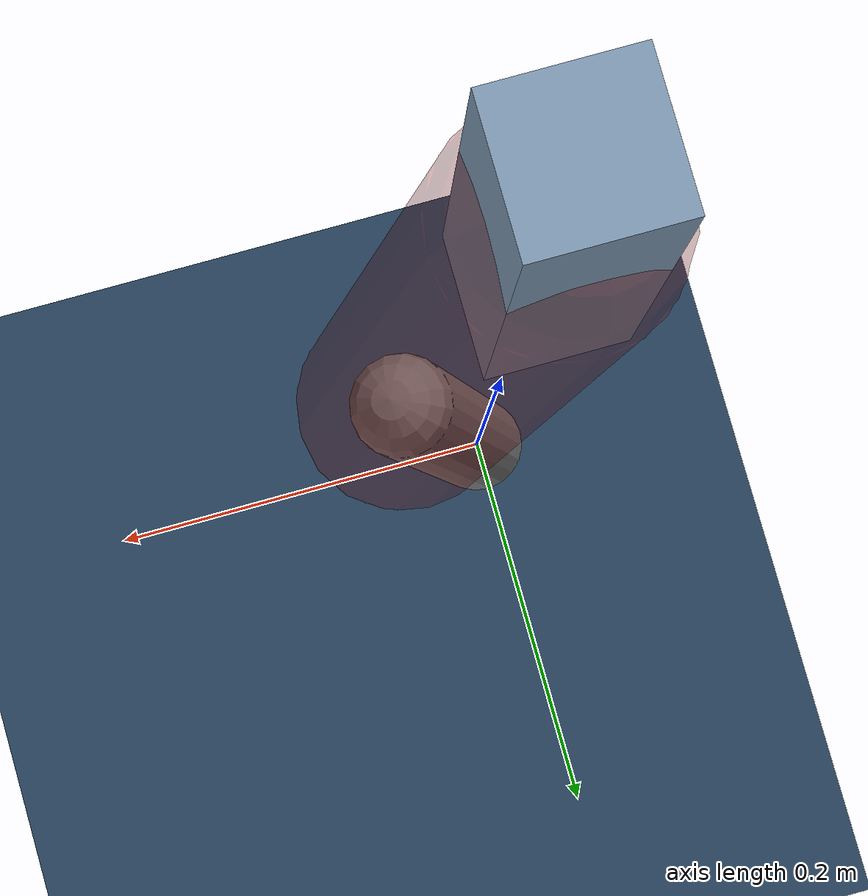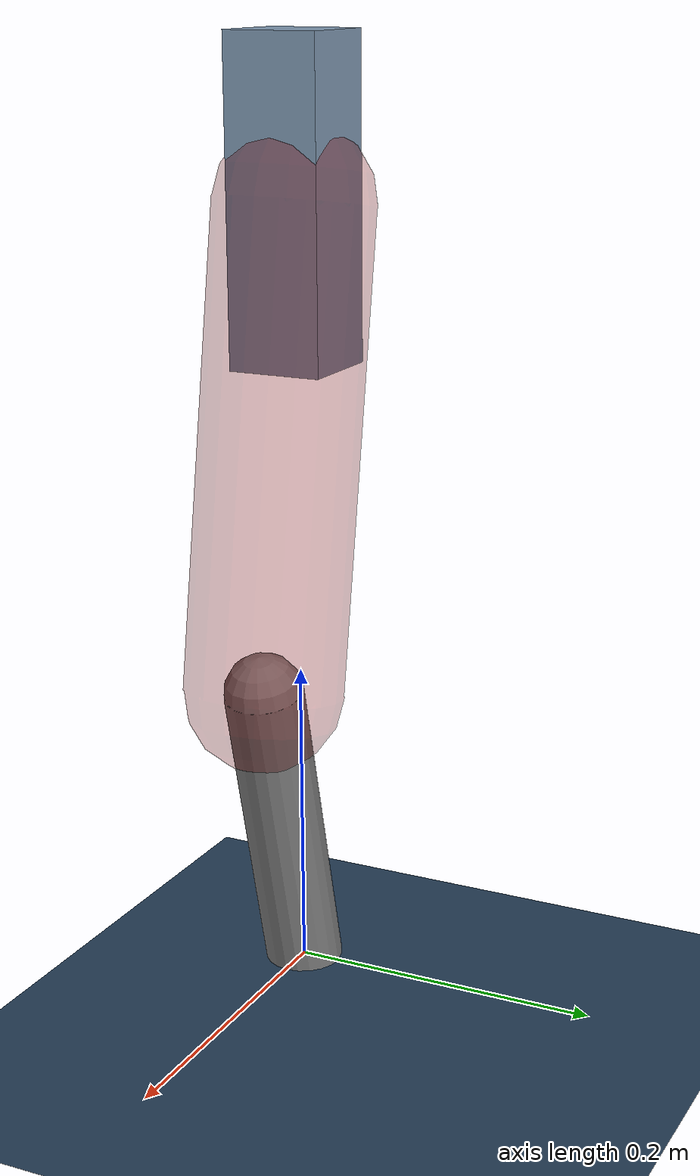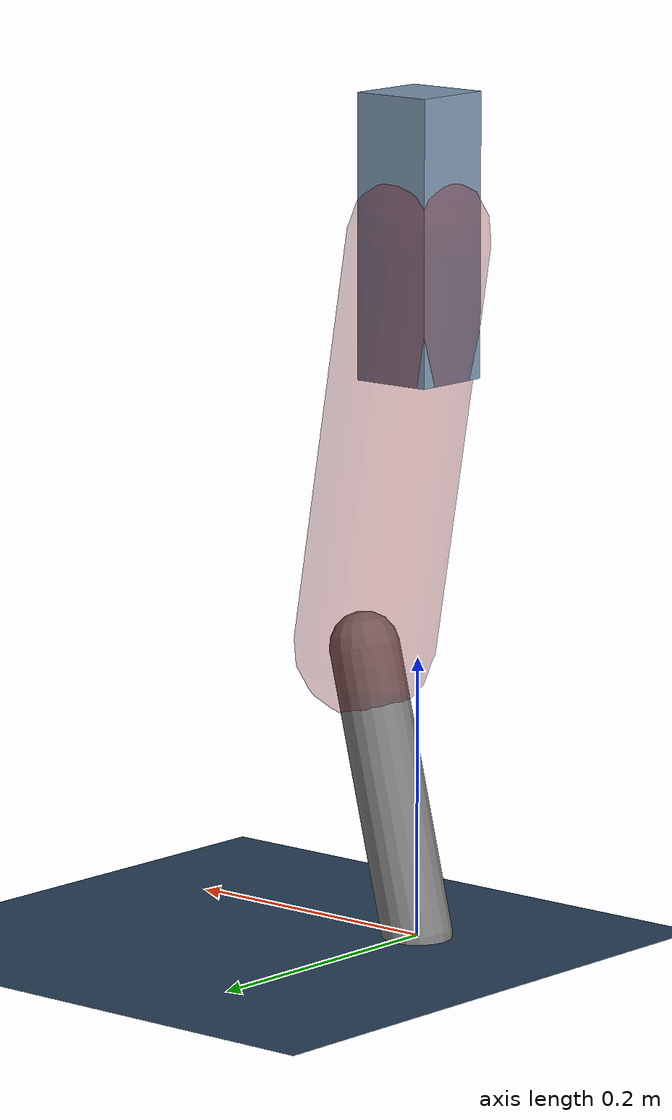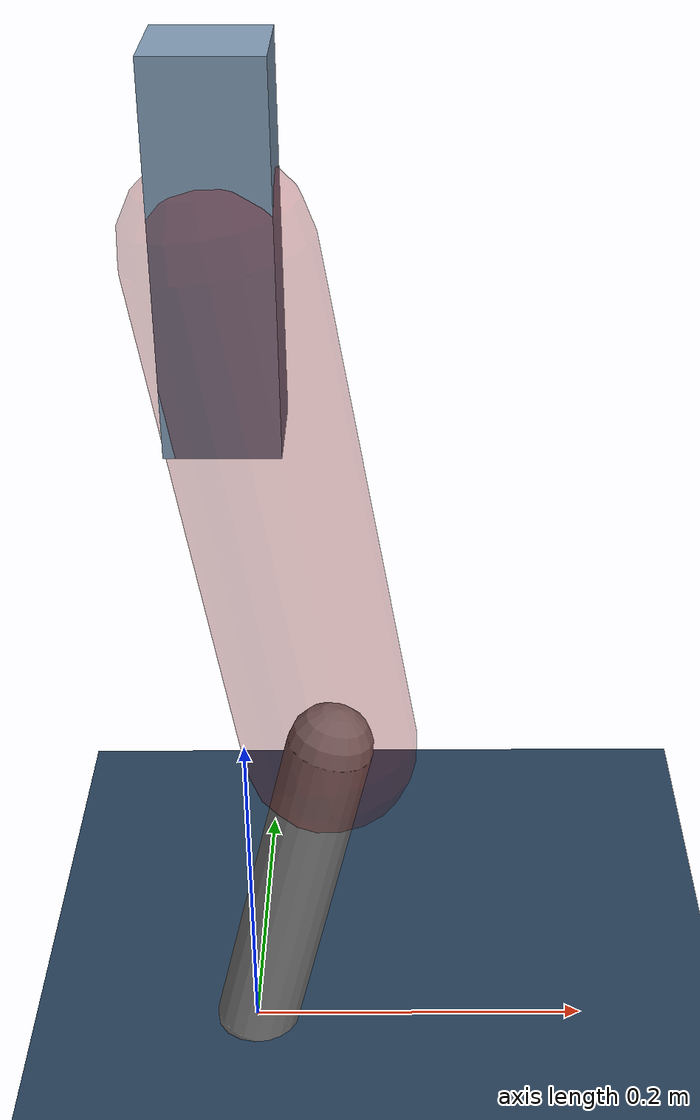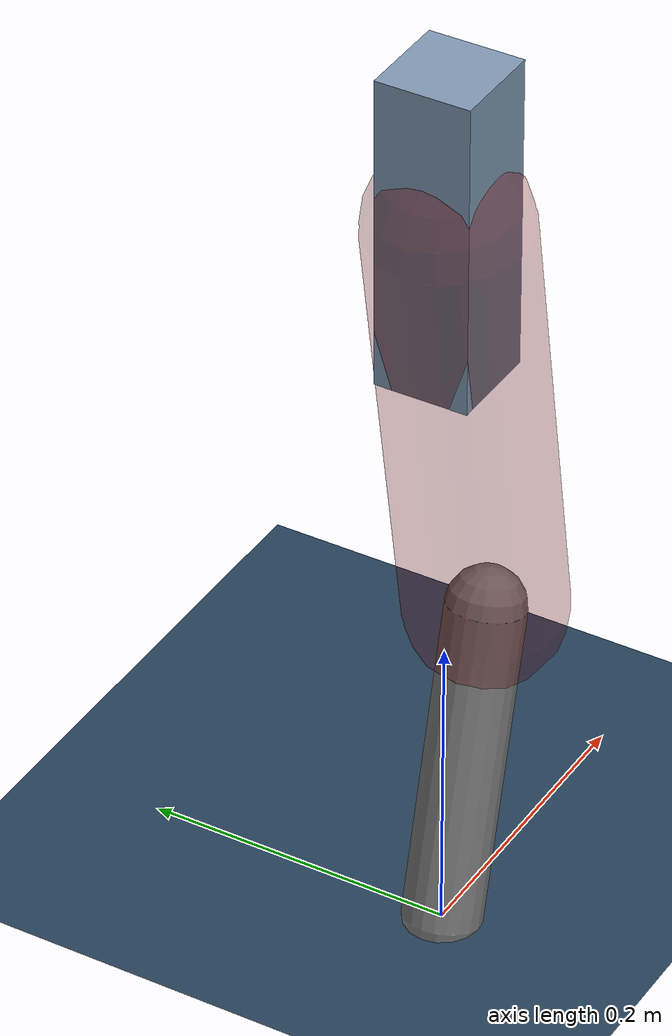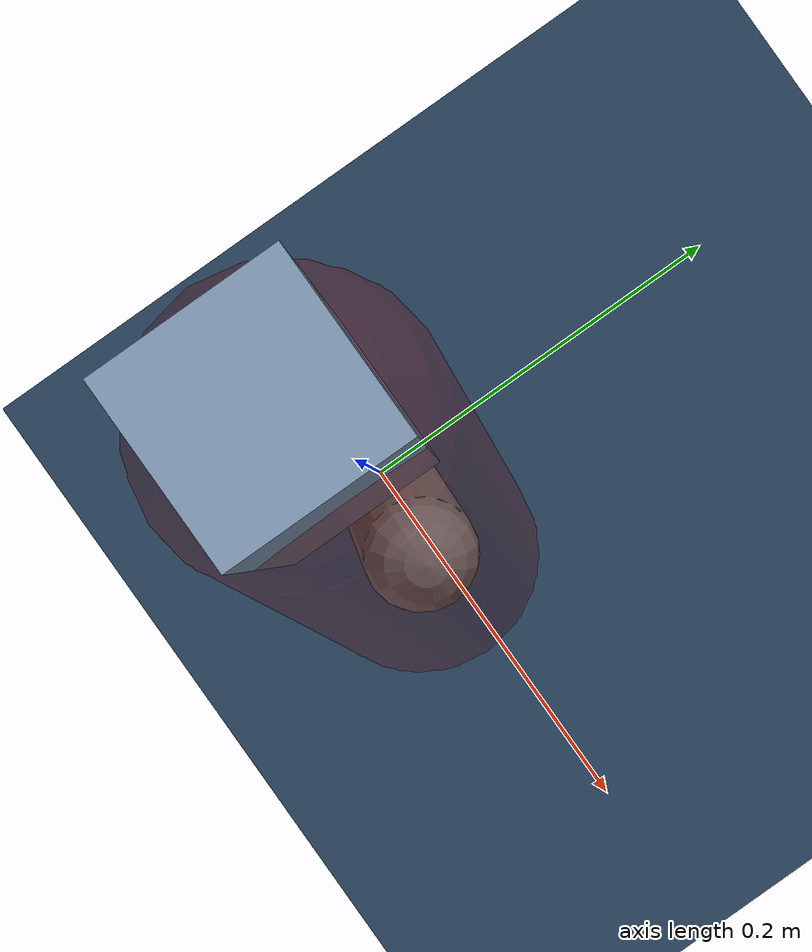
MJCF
<mujoco model="Hopper2D">
	<compiler inertiafromgeom="true" angle="radian" />
	<option timestep="0.001" integrator="implicit" cone="elliptic" solver="Newton" tolerance="1e-10" />

	<default>
		<geom contype="1" conaffinity="1" condim="3" friction="2 0.005 0.0001" solref="0.005 1" />
		<joint limited="true" damping="0.1" />
	</default>

	<asset>
		<texture name="skybox" type="skybox" builtin="gradient" rgb1=".4 .6 .8" rgb2="0 0 0" width="800" height="800" />
		<texture name="grid" type="2d" builtin="checker" rgb1=".1 .2 .3" rgb2=".2 .3 .4" width="300" height="300" mark="edge" markrgb=".2 .3 .4" />
		<material name="ground" texture="grid" texrepeat="1 1" texuniform="true" reflectance="0.1" />
		<material name="leg" rgba="0.5 0.6 0.7 1" />
	</asset>

	<worldbody>

		<geom name="floor" type="plane" size="5 5 0.25" material="ground" />

		<light directional="false" diffuse="0.8 0.8 0.8" specular="0.3 0.3 0.3" pos="0 0 2" dir="0 0 -1" />
		<light mode="targetbodycom" target="base" directional="false" diffuse="0.8 0.8 0.8" specular="0.3 0.3 0.3" pos="0 0 2" dir="0 0 -1" />

		<camera name="fixed" pos="0 -2 1" xyaxes="1 0 0 0 0 1" />
		<camera name="tracking" mode="trackcom" pos="0 -3 1" />

		<body name="root" pos="0 0 0.4969230661215275">
			<joint name="slide_x" type="slide" axis="1 0 0" range="-100 100" />
			<joint name="slide_z" type="slide" axis="0 0 1" range="0 10" />

			<body name="base" pos="0 0 0">
				<geom name="torso" type="box" size="0.03 0.03 0.1" mass="2.356" material="leg" />

				<body name="link1" pos="0 0 0" euler="0 1.4057332619158331 0">
					<joint type="hinge" axis="0 -1 0" pos="0 0 0" name="hinge1" limited="true" range="-3.14 3.14" stiffness="0" damping="0.1" />
					<geom name="thigh" type="capsule" fromto="0 0 0 0.29958078501287133 0 0" size="0.05" rgba="0.5 0 0 0.3" mass="0.9875681195347527" />

					<body name="link2" pos="0.29958078501287133 0 0" euler="0 0.40476354074191095 0">
						<joint type="hinge" axis="0 -1 0" pos="0 0 0" name="hinge2" limited="true" range="-3.14 3.14" stiffness="0" damping="0.1" />
						<geom name="shank" type="capsule" fromto="0 0 0 0.20734228110865618 0 0" size="0.025" mass="0.40707382488692495" />

					</body>
				</body>
			</body>
		</body>
	</worldbody>

	<actuator>
		<motor name="torque1" joint="hinge1" ctrlrange="-71.50312681958965 71.50312681958965" ctrllimited="true" gear="1" />
		<motor name="torque2" joint="hinge2" ctrlrange="-106.26081178141831 106.26081178141831" ctrllimited="true" gear="1" />
	</actuator>
</mujoco>
